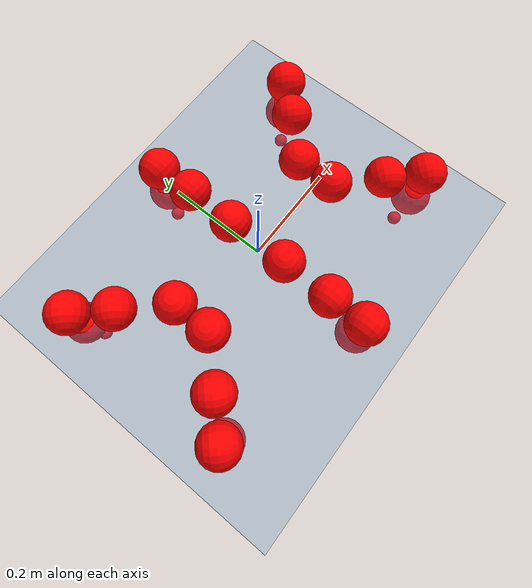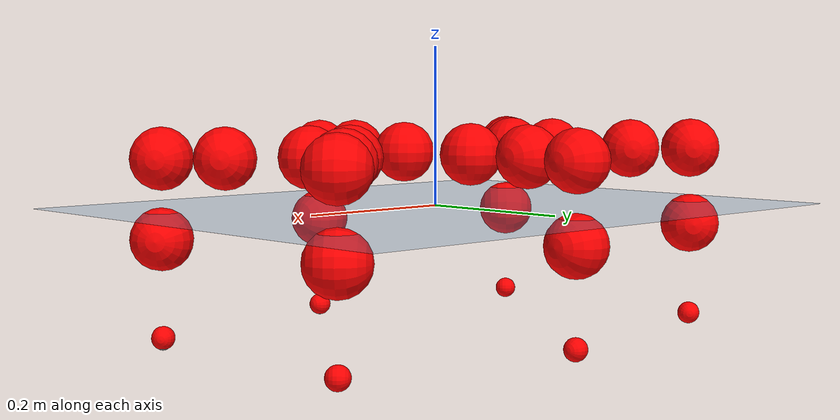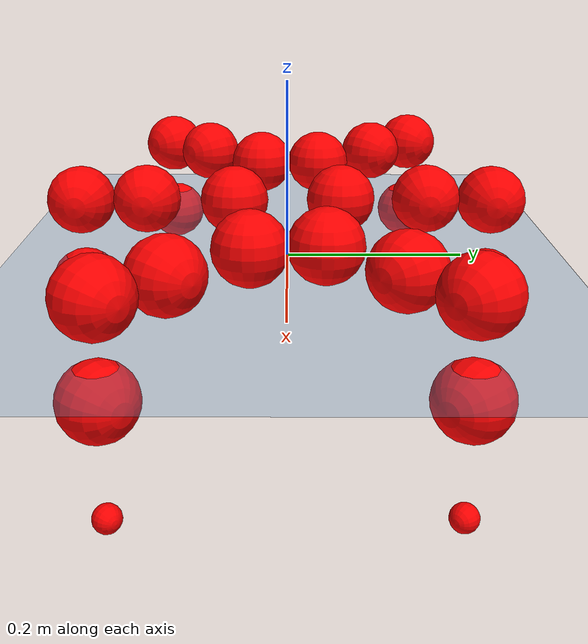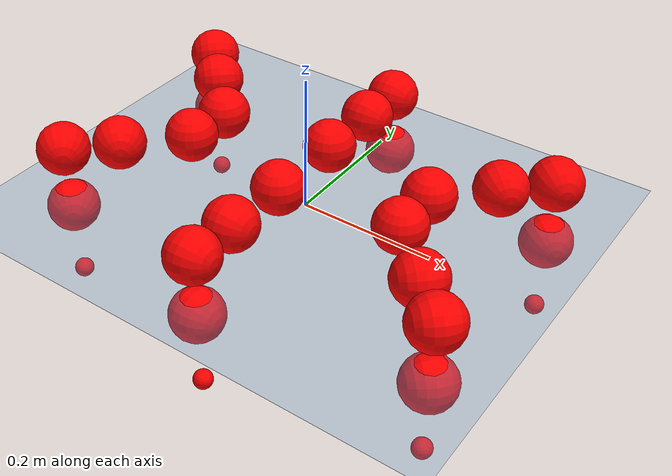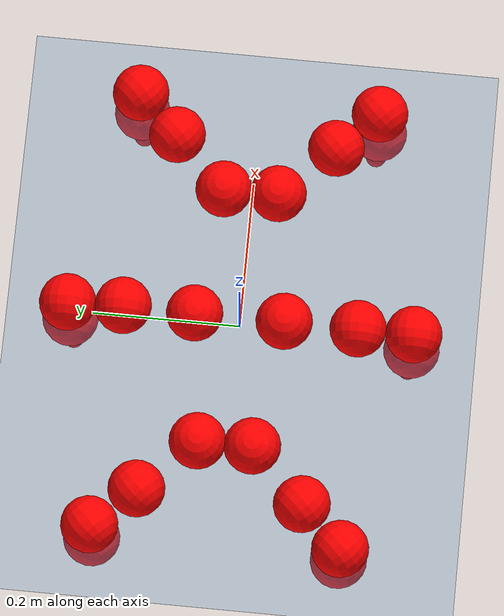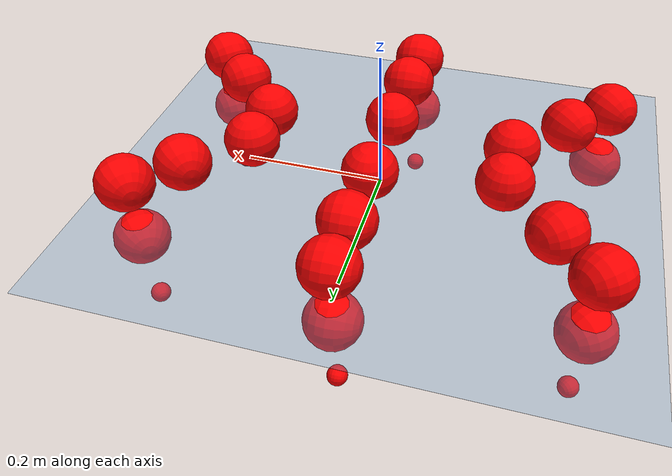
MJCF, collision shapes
<mujoco model="Golem">
  <compiler angle="radian" assetdir="assets" balanceinertia="true" inertiafromgeom="false"/>

  <option timestep="0.005" density="1.2" viscosity="2e-05"/>

  <size nkey="1"/>

  <visual>
    <quality shadowsize="8192"/>
    <map shadowclip="0.5"/>
  </visual>

  <default>
    <default class="/">
      <joint armature="0.01" damping="0.01" frictionloss="0.01"/>
      <geom contype="0" conaffinity="0" group="1" solref="-1000 -80"/>
      <site size="0.01 0.005 0.005" group="5"/>
      <general forcelimited="true" biastype="affine" gainprm="25" biasprm="0 -25 -0.5"/>
      <default class="visual">
        <geom type="mesh" group="2"/>
      </default>
      <default class="collision">
        <geom group="3"/>
      </default>
      <default class="foot">
        <geom size="0.01 0 0" condim="6" group="4" priority="1" solimp="0.015 1 0.01"/>
      </default>
      <default class="reward_collision_sphere">
        <geom group="5" rgba="1 0 0 1"/>
      </default>
    </default>
  </default>

  <asset>
    <texture type="skybox" colorspace="auto" name="//unnamed_texture_0" builtin="gradient" rgb1="0.95 0.95 0.95" rgb2="0.95 0.95 0.95" width="100" height="600"/>
    <texture type="2d" colorspace="auto" name="texplane" builtin="checker" rgb1="0.345 0.575 0.748" rgb2="0.345 0.575 0.748" markrgb="1 1 1" width="512" height="512"/>
    <material name="MatPlane" class="/" texture="texplane" texuniform="true" texrepeat="2 2" specular="0.9"/>
    <mesh name="body" class="/" file="body.stl" scale="0.001 0.001 0.001"/>
    <mesh name="coxa" class="/" file="coxa.stl" scale="0.001 0.001 0.001"/>
    <mesh name="femur" class="/" file="femur.stl" scale="0.001 0.001 0.001"/>
    <mesh name="tibia" class="/" file="tibia.stl" scale="0.001 0.001 0.001"/>
    <mesh name="tarsus" class="/" file="tarsus.stl" scale="0.001 0.001 0.001"/>
  </asset>

  <worldbody>
    <geom name="floor" class="/" size="100 100 0.125" type="plane" group="0" material="MatPlane"/>
    <light name="toplight_shadow" class="/" pos="0 0 5" dir="0.0990148 0.0990148 -0.990148" type="directional" ambient="0.04 0.04 0.04" diffuse="0.55 0.55 0.55" specular="0.12 0.12 0.12"/>
    <light name="toplight_fill" class="/" pos="0 0 5" dir="0.0990148 0.0990148 -0.990148" type="directional" castshadow="false" ambient="0.04 0.04 0.04" diffuse="0.3 0.3 0.3" specular="0.08 0.08 0.08"/>
    <body name="trunk" pos="-0.000983733 0.00168793 -0.000170554" quat="1 1.42433e-05 7.62445e-05 -6.35586e-06">
      <inertial pos="0.00104958 -0.000423326 -0.00539432" quat="0.999996 -0.000417952 0.000673604 -0.00259673" mass="3.34657" diaginertia="0.0174413 0.00188765 0.0123668"/>
      <joint name="//unnamed_joint_0" type="free"/>
      <geom name="//unnamed_geom_1" class="/" pos="0 0 0.0669248" quat="1 0 0 0" type="mesh" rgba="0.9 0.9 0.9 1" mesh="body"/>
      <site name="imu" class="/" pos="0.142825 -0.00065188 0.102383" size="0.00957806"/>
      <camera name="track" class="/" pos="0 -1.42785 0" quat="0.707107 0.707107 0 0" mode="trackcom"/>
      <camera name="ego_camera" class="/" pos="0.144793 0 0.10457" quat="-0.5 -0.5 0.5 0.5"/>
      <body name="coxa_RR" pos="-0.198227 -0.0587538 0.0691633" quat="0.382619 7.53645e-06 0.000614576 -0.923906">
        <inertial pos="-0.000225135 -0.00207097 0.0025397" quat="0.999996 0.00066196 0.000445414 -0.0025897" mass="0.178569" diaginertia="0.0172614 0.00188324 0.0124892"/>
        <joint name="coxa_joint_RR" class="/" pos="0 0 0" axis="0.00290621 0.00222973 -0.999993" range="-3.12271 3.13599" armature="0.0096366" damping="0.00950613" frictionloss="0.0095284"/>
        <geom name="//unnamed_geom_2" class="/" type="mesh" rgba="0.2 0.2 0.2 1" mesh="coxa"/>
        <geom name="//unnamed_geom_3" class="reward_collision_sphere" size="0.0383122" pos="-0.0334138 0 0"/>
        <body name="femur_RR" pos="0.0685358 0.000764109 -0.00138873" quat="0.500217 -0.500187 0.499541 0.500054">
          <inertial pos="-0.00105372 0.000562829 0.000669754" quat="1 7.69961e-06 -4.83975e-06 -1.04798e-05" mass="0.176056" diaginertia="0.0171889 0.00186933 0.0125765"/>
          <joint name="femur_joint_RR" class="/" pos="0 0 0" axis="-0.00259199 0.00135883 -0.999996" range="-3.14334 3.13325" armature="0.00936664" damping="0.00541929" frictionloss="0.00964141"/>
          <geom name="//unnamed_geom_4" class="/" type="mesh" rgba="0.9 0.9 0.9 1" mesh="femur"/>
          <geom name="//unnamed_geom_5" class="reward_collision_sphere" size="0.0383122"/>
          <body name="tibia_RR" pos="0.00107243 -0.0781652 0.000808642" quat="-9.12246e-05 1 -5.60756e-05 9.88734e-06">
            <inertial pos="-0.00080598 -0.000408727 -0.000697375" quat="0.999998 -0.000105097 -0.00198796 -8.53398e-05" mass="0.172777" diaginertia="0.0170666 0.00186383 0.0127668"/>
            <joint name="tibia_joint_RR" class="/" pos="0 0 0" axis="0.00016041 -0.00273779 0.999996" range="-3.12505 3.09238" armature="0.00970041" damping="0.00944577" frictionloss="0.00958625"/>
            <geom name="//unnamed_geom_6" class="/" type="mesh" rgba="0.2 0.2 0.2 1" mesh="tibia"/>
            <geom name="//unnamed_geom_7" class="reward_collision_sphere" size="0.0383122"/>
            <body name="tarsus_RR" pos="0.0983055 -0.00115747 -0.000992751" quat="1 6.23473e-05 0.000104921 -6.93455e-05">
              <inertial pos="0.0692584 0.00297706 -0.00129272" quat="0.501415 0.497982 0.502006 0.498585" mass="0.17962" diaginertia="0.0175617 0.00192409 0.012786"/>
              <joint name="tarsus_joint_RR" class="/" pos="0 0 0" axis="-0.00556295 0.00259056 0.999981" range="-3.09689 3.13706" armature="0.00909809" damping="0.0392" frictionloss="0.0093161"/>
              <geom name="//unnamed_geom_8" class="/" type="mesh" rgba="0.9 0.9 0.9 1" mesh="tarsus"/>
              <geom name="foot_1" class="foot" size="0.00914035" pos="0.124745 0 0" quat="0 -0.707107 0 0.707107"/>
              <geom name="//unnamed_geom_10" class="reward_collision_sphere" size="0.0383122"/>
              <geom name="//unnamed_geom_11" class="reward_collision_sphere" size="0.0143671" pos="0.119733 0 0"/>
              <site name="foot_1" class="foot" pos="0.124745 0 0" quat="0 -0.707107 0 0.707107" size="0.00957806"/>
            </body>
          </body>
        </body>
      </body>
      <body name="coxa_RM" pos="-0.000674714 -0.0948166 0.0659417" quat="0.707125 4.65272e-05 1.86623e-05 -0.707089">
        <inertial pos="-9.06214e-06 -0.000607366 -0.000671213" quat="1 0.000346542 1.31452e-05 0.000472936" mass="0.173569" diaginertia="0.0169518 0.00182993 0.0123616"/>
        <joint name="coxa_joint_RM" class="/" pos="0 0 0" axis="0.000924779 -0.00499738 -0.999987" range="-3.12879 3.15664" armature="0.00973994" damping="0.00670556" frictionloss="0.008497"/>
        <geom name="//unnamed_geom_12" class="/" type="mesh" rgba="0.2 0.2 0.2 1" mesh="coxa"/>
        <geom name="//unnamed_geom_13" class="reward_collision_sphere" size="0.0383122" pos="-0.0334138 0 0"/>
        <body name="femur_RM" pos="0.0658958 -0.000870495 0.00100857" quat="0.500003 -0.499964 0.500016 0.500016">
          <inertial pos="0.000188825 -1.72225e-05 0.000784598" quat="0.999994 0.00124924 0.00252413 0.00209253" mass="0.173544" diaginertia="0.0166745 0.00186728 0.012442"/>
          <joint name="femur_joint_RM" class="/" pos="0 0 0" axis="-0.00379918 -0.000622056 -0.999993" range="-3.15393 3.14908" armature="0.0093602" damping="0" frictionloss="0.00946856"/>
          <geom name="//unnamed_geom_14" class="/" type="mesh" rgba="0.9 0.9 0.9 1" mesh="femur"/>
          <geom name="//unnamed_geom_15" class="reward_collision_sphere" size="0.0383122"/>
          <body name="tibia_RM" pos="0.00150732 -0.0747936 -0.000567318" quat="-0.000104335 1 1.77074e-05 4.84825e-05">
            <inertial pos="-0.00211769 -0.00239034 -0.00105493" quat="0.999943 -0.00123784 -0.00357421 -0.010005" mass="0.174553" diaginertia="0.0170556 0.00184975 0.0121488"/>
            <joint name="tibia_joint_RM" class="/" pos="0 0 0" axis="0.000856385 -0.000774816 0.999999" range="-3.13087 3.12416" armature="0.00929068" damping="0.0149739" frictionloss="0.00945798"/>
            <geom name="//unnamed_geom_16" class="/" type="mesh" rgba="0.2 0.2 0.2 1" mesh="tibia"/>
            <geom name="//unnamed_geom_17" class="reward_collision_sphere" size="0.0383122"/>
            <body name="tarsus_RM" pos="0.0975158 0.000798405 -0.000369233" quat="1 0.000282833 0.000137674 8.03855e-05">
              <inertial pos="0.0665993 0.000886393 0.000395841" quat="0.498848 0.501815 0.500413 0.498919" mass="0.175987" diaginertia="0.0169741 0.00186234 0.0125076"/>
              <joint name="tarsus_joint_RM" class="/" pos="0 0 0" axis="-0.000326655 -0.00190686 0.999998" range="-3.13925 3.13575" armature="0.00867319" damping="0.00401007" frictionloss="0.00976784"/>
              <geom name="//unnamed_geom_18" class="/" type="mesh" rgba="0.9 0.9 0.9 1" mesh="tarsus"/>
              <geom name="foot_2" class="foot" size="0.00935706" pos="0.124745 0 0" quat="0 -0.707107 0 0.707107"/>
              <geom name="//unnamed_geom_20" class="reward_collision_sphere" size="0.0383122"/>
              <geom name="//unnamed_geom_21" class="reward_collision_sphere" size="0.0143671" pos="0.119733 0 0"/>
              <site name="foot_2" class="foot" pos="0.124745 0 0" quat="0 -0.707107 0 0.707107" size="0.00957806"/>
            </body>
          </body>
        </body>
      </body>
      <body name="coxa_RF" pos="0.197949 -0.0607465 0.0660288" quat="0.923922 9.95976e-05 -0.000250663 -0.382581">
        <inertial pos="0.00162476 -0.0001576 0.000383948" quat="0.999999 -0.000535536 -0.000464989 -0.000931836" mass="0.176741" diaginertia="0.0175953 0.00184696 0.0122776"/>
        <joint name="coxa_joint_RF" class="/" pos="0 0 0" axis="0.000155938 -0.00247504 -0.999997" range="-3.13694 3.13044" armature="0.0099163" damping="0.00880728" frictionloss="0.00932688"/>
        <geom name="//unnamed_geom_22" class="/" type="mesh" rgba="0.2 0.2 0.2 1" mesh="coxa"/>
        <geom name="//unnamed_geom_23" class="reward_collision_sphere" size="0.0383122" pos="-0.0334138 0 0"/>
        <body name="femur_RF" pos="0.067825 -0.000843371 -0.00153087" quat="0.500122 -0.499726 0.499983 0.500169">
          <inertial pos="-0.000663378 0.000181164 -0.000810503" quat="0.99999 0.00159093 0.000419574 -0.00423909" mass="0.174216" diaginertia="0.0172667 0.00190044 0.0123899"/>
          <joint name="femur_joint_RF" class="/" pos="0 0 0" axis="0.000278477 0.000162552 -1" range="-3.11042 3.14304" armature="0.00974283" damping="0" frictionloss="0.00909463"/>
          <geom name="//unnamed_geom_24" class="/" type="mesh" rgba="0.9 0.9 0.9 1" mesh="femur"/>
          <geom name="//unnamed_geom_25" class="reward_collision_sphere" size="0.0383122"/>
          <body name="tibia_RF" pos="0.000129628 -0.0763169 -0.000698335" quat="-6.7911e-07 1 7.5512e-05 2.53033e-06">
            <inertial pos="-0.00102331 0.000502523 0.00020002" quat="0.999989 -0.00340629 -0.000372705 -0.00309546" mass="0.175903" diaginertia="0.0175963 0.00185685 0.0126287"/>
            <joint name="tibia_joint_RF" class="/" pos="0 0 0" axis="0.000777288 7.30044e-05 1" range="-3.12871 3.14864" armature="0.00919155" damping="0.0116043" frictionloss="0.00907604"/>
            <geom name="//unnamed_geom_26" class="/" type="mesh" rgba="0.2 0.2 0.2 1" mesh="tibia"/>
            <geom name="//unnamed_geom_27" class="reward_collision_sphere" size="0.0383122"/>
            <body name="tarsus_RF" pos="0.0970658 0.00134564 0.00149638" quat="0.999999 0.000758966 0.000644199 -0.000111925">
              <inertial pos="0.0664159 -0.00188522 0.000629213" quat="0.500295 0.504062 0.504878 0.490637" mass="0.172505" diaginertia="0.0174195 0.00179242 0.0124484"/>
              <joint name="tarsus_joint_RF" class="/" pos="0 0 0" axis="-0.00438802 -0.00326098 0.999985" range="-3.10061 3.12887" armature="0.01067" damping="0" frictionloss="0.00964592"/>
              <geom name="//unnamed_geom_28" class="/" type="mesh" rgba="0.9 0.9 0.9 1" mesh="tarsus"/>
              <geom name="foot_3" class="foot" size="0.0100327" pos="0.124745 0 0" quat="0 -0.707107 0 0.707107"/>
              <geom name="//unnamed_geom_30" class="reward_collision_sphere" size="0.0383122"/>
              <geom name="//unnamed_geom_31" class="reward_collision_sphere" size="0.0143671" pos="0.119733 0 0"/>
              <site name="foot_3" class="foot" pos="0.124745 0 0" quat="0 -0.707107 0 0.707107" size="0.00957806"/>
            </body>
          </body>
        </body>
      </body>
      <body name="coxa_LR" pos="-0.198158 0.0616656 0.0693168" quat="0.383028 -0.000245623 0.000543856 0.923737">
        <inertial pos="0.0011025 -0.00243259 -0.000621737" quat="0.999987 0.00378249 -0.00327377 0.000107663" mass="0.170964" diaginertia="0.016697 0.00184928 0.0121783"/>
        <joint name="coxa_joint_LR" class="/" pos="0 0 0" axis="0.000137222 0.000112239 -1" range="-3.12258 3.17805" armature="0.00874291" damping="0.00740609" frictionloss="0.00956189"/>
        <geom name="//unnamed_geom_32" class="/" type="mesh" rgba="0.2 0.2 0.2 1" mesh="coxa"/>
        <geom name="//unnamed_geom_33" class="reward_collision_sphere" size="0.0383122" pos="-0.0334138 0 0"/>
        <body name="femur_LR" pos="0.0697143 -0.00170861 -0.000989286" quat="0.500107 -0.499775 0.500014 0.500104">
          <inertial pos="-0.00102853 -0.000146244 -0.000793542" quat="0.999952 -0.00541994 -0.00305552 -0.0076158" mass="0.17622" diaginertia="0.0172483 0.00185707 0.012865"/>
          <joint name="femur_joint_LR" class="/" pos="0 0 0" axis="-0.00132527 -0.000875987 0.999999" range="-3.09452 3.1187" armature="0.00947348" damping="0.00128709" frictionloss="0.00939884"/>
          <geom name="//unnamed_geom_34" class="/" type="mesh" rgba="0.9 0.9 0.9 1" mesh="femur"/>
          <geom name="//unnamed_geom_35" class="reward_collision_sphere" size="0.0383122"/>
          <body name="tibia_LR" pos="-0.000969758 -0.0785136 -0.00213912" quat="-0.00023171 1 4.48734e-05 -0.000168139">
            <inertial pos="-0.000502257 -0.00187927 0.000935361" quat="1 1.40446e-05 0.000703052 -0.000702909" mass="0.175711" diaginertia="0.0171777 0.00183481 0.0125304"/>
            <joint name="tibia_joint_LR" class="/" pos="0 0 0" axis="0.000911759 0.00281839 -0.999996" range="-3.16031 3.13214" armature="0.00968611" damping="0" frictionloss="0.00955937"/>
            <geom name="//unnamed_geom_36" class="/" type="mesh" rgba="0.2 0.2 0.2 1" mesh="tibia"/>
            <geom name="//unnamed_geom_37" class="reward_collision_sphere" size="0.0383122"/>
            <body name="tarsus_LR" pos="0.0994243 0.000684144 3.99493e-06" quat="1 -0.000539496 3.89646e-05 0.000434923">
              <inertial pos="0.068151 0.000182852 0.000283317" quat="0.500255 0.499564 0.499918 0.500262" mass="0.175145" diaginertia="0.0169624 0.00184139 0.0123232"/>
              <joint name="tarsus_joint_LR" class="/" pos="0 0 0" axis="0.000948467 0.00154063 -0.999998" range="-3.16879 3.13598" armature="0.00963216" damping="0.0301629" frictionloss="0.00878603"/>
              <geom name="//unnamed_geom_38" class="/" type="mesh" rgba="0.9 0.9 0.9 1" mesh="tarsus"/>
              <geom name="foot_4" class="foot" size="0.00934304" pos="0.124745 0 0" quat="0.707107 0 -0.707107 0"/>
              <geom name="//unnamed_geom_40" class="reward_collision_sphere" size="0.0383122"/>
              <geom name="//unnamed_geom_41" class="reward_collision_sphere" size="0.0143671" pos="0.119733 0 0"/>
              <site name="foot_4" class="foot" pos="0.124745 0 0" quat="0.707107 0 -0.707107 0" size="0.00957806"/>
            </body>
          </body>
        </body>
      </body>
      <body name="coxa_LM" pos="-0.000928041 0.0923405 0.067025" quat="0.707275 -0.000203898 -8.35817e-05 0.706938">
        <inertial pos="-0.000849069 0.000857267 0.000189471" quat="1 0.000227006 -0.00037081 -0.000515598" mass="0.177734" diaginertia="0.0169663 0.00181884 0.0128595"/>
        <joint name="coxa_joint_LM" class="/" pos="0 0 0" axis="-0.00331025 -0.000236623 -0.999994" stiffness="0.0074434" range="-3.13702 3.1367" armature="0.0104909" damping="0.00238292" frictionloss="0.00952903"/>
        <geom name="//unnamed_geom_42" class="/" type="mesh" rgba="0.2 0.2 0.2 1" mesh="coxa"/>
        <geom name="//unnamed_geom_43" class="reward_collision_sphere" size="0.0383122" pos="-0.0334138 0 0"/>
        <body name="femur_LM" pos="0.0627334 -0.00111305 0.000764266" quat="0.499928 -0.500008 0.50002 0.500044">
          <inertial pos="0.000993152 -0.000781252 0.00162446" quat="0.999999 0.000556016 0.000503185 -0.00116174" mass="0.176082" diaginertia="0.0169827 0.0018512 0.0126656"/>
          <joint name="femur_joint_LM" class="/" pos="0 0 0" axis="0.00751866 0.00244422 0.999969" range="-3.13269 3.12174" armature="0.00914474" damping="0.00546003" frictionloss="0.00970419"/>
          <geom name="//unnamed_geom_44" class="/" type="mesh" rgba="0.9 0.9 0.9 1" mesh="femur"/>
          <geom name="//unnamed_geom_45" class="reward_collision_sphere" size="0.0383122"/>
          <body name="tibia_LM" pos="0.00193945 -0.0746881 0.0020228" quat="-9.64417e-07 1 -7.49515e-05 -0.000262206">
            <inertial pos="0.000311667 -0.00240635 0.00228438" quat="0.999936 0.00104521 0.00289838 -0.0109176" mass="0.171698" diaginertia="0.0172925 0.00182168 0.0123266"/>
            <joint name="tibia_joint_LM" class="/" pos="0 0 0" axis="-0.00292051 -0.00146732 -0.999995" range="-3.13685 3.10534" armature="0.00915892" damping="0.00398585" frictionloss="0.00954001"/>
            <geom name="//unnamed_geom_46" class="/" type="mesh" rgba="0.2 0.2 0.2 1" mesh="tibia"/>
            <geom name="//unnamed_geom_47" class="reward_collision_sphere" size="0.0383122"/>
            <body name="tarsus_LM" pos="0.0980673 0.000161152 0.000823594" quat="1 -0.000155569 -0.000159109 0.000458141">
              <inertial pos="0.0674489 0.000104018 -0.00129031" quat="0.505713 0.498729 0.492252 0.503202" mass="0.180297" diaginertia="0.0172809 0.00184853 0.0125693"/>
              <joint name="tarsus_joint_LM" class="/" pos="0 0 0" axis="0.000758261 0.00640777 -0.999979" range="-3.14543 3.10737" armature="0.00999409" damping="0" frictionloss="0.00954658"/>
              <geom name="//unnamed_geom_48" class="/" type="mesh" rgba="0.9 0.9 0.9 1" mesh="tarsus"/>
              <geom name="foot_5" class="foot" size="0.00950998" pos="0.124745 0 0" quat="0.707107 0 -0.707107 0"/>
              <geom name="//unnamed_geom_50" class="reward_collision_sphere" size="0.0383122"/>
              <geom name="//unnamed_geom_51" class="reward_collision_sphere" size="0.0143671" pos="0.119733 0 0"/>
              <site name="foot_5" class="foot" pos="0.124745 0 0" quat="0.707107 0 -0.707107 0" size="0.00957806"/>
            </body>
          </body>
        </body>
      </body>
      <body name="coxa_LF" pos="0.196951 0.0600621 0.068387" quat="0.92376 -0.000811313 -5.41785e-05 0.38297">
        <inertial pos="-0.000832007 0.000796002 -0.000771791" quat="0.999936 -0.00403868 -0.000574411 0.0105384" mass="0.180206" diaginertia="0.0173067 0.001898 0.0121663"/>
        <joint name="coxa_joint_LF" class="/" pos="0 0 0" axis="0.000963518 0.00113282 -0.999999" range="-3.13893 3.14019" armature="0.00975305" damping="0.00372229" frictionloss="0.00949191"/>
        <geom name="//unnamed_geom_52" class="/" type="mesh" rgba="0.2 0.2 0.2 1" mesh="coxa"/>
        <geom name="//unnamed_geom_53" class="reward_collision_sphere" size="0.0383122" pos="-0.0334138 0 0"/>
        <body name="femur_LF" pos="0.0652021 0.000119546 -0.000214771" quat="0.500253 -0.499817 0.500237 0.499692">
          <inertial pos="0.00162634 0.000986568 0.00190925" quat="0.999987 0.00213965 -0.000415873 0.00458032" mass="0.173286" diaginertia="0.0167879 0.00185023 0.0121117"/>
          <joint name="femur_joint_LF" class="/" pos="0 0 0" axis="-0.00300249 -0.00201152 0.999993" range="-3.1405 3.18455" armature="0.00978989" damping="0" frictionloss="0.00974524"/>
          <geom name="//unnamed_geom_54" class="/" type="mesh" rgba="0.9 0.9 0.9 1" mesh="femur"/>
          <geom name="//unnamed_geom_55" class="reward_collision_sphere" size="0.0383122"/>
          <body name="tibia_LF" pos="0.00189235 -0.0770877 0.000523212" quat="-4.83682e-05 1 -0.000108793 -0.000105331">
            <inertial pos="6.98734e-05 -0.000851487 2.00763e-05" quat="0.999999 -0.00114114 0.000532423 -0.000239029" mass="0.175611" diaginertia="0.0171058 0.00185943 0.0125366"/>
            <joint name="tibia_joint_LF" class="/" pos="0 0 0" axis="0.00187593 0.00186204 -0.999997" range="-3.11928 3.14573" armature="0.00871227" damping="0" frictionloss="0.00911447"/>
            <geom name="//unnamed_geom_56" class="/" type="mesh" rgba="0.2 0.2 0.2 1" mesh="tibia"/>
            <geom name="//unnamed_geom_57" class="reward_collision_sphere" size="0.0383122"/>
            <body name="tarsus_LF" pos="0.0983262 0.000206343 5.54988e-05" quat="1 0.00033529 -0.00013208 0.000285755">
              <inertial pos="0.0664489 -0.00090924 0.000541375" quat="0.500154 0.500693 0.499316 0.499836" mass="0.173884" diaginertia="0.0173275 0.00186753 0.0125589"/>
              <joint name="tarsus_joint_LF" class="/" pos="0 0 0" axis="0.00298872 -0.00194831 -0.999994" stiffness="0.0220073" range="-3.17461 3.17676" armature="0.00957495" damping="0" frictionloss="0.00936022"/>
              <geom name="//unnamed_geom_58" class="/" type="mesh" rgba="0.9 0.9 0.9 1" mesh="tarsus"/>
              <geom name="foot_6" class="foot" size="0.00923614" pos="0.124745 0 0" quat="0.707107 0 -0.707107 0"/>
              <geom name="//unnamed_geom_60" class="reward_collision_sphere" size="0.0383122"/>
              <geom name="//unnamed_geom_61" class="reward_collision_sphere" size="0.0143671" pos="0.119733 0 0"/>
              <site name="foot_6" class="foot" pos="0.124745 0 0" quat="0.707107 0 -0.707107 0" size="0.00957806"/>
            </body>
          </body>
        </body>
      </body>
    </body>
  </worldbody>

  <contact>
    <pair class="/" geom1="floor" geom2="foot_1" name="//unnamed_contact_0"/>
    <pair class="/" geom1="floor" geom2="foot_2" name="//unnamed_contact_1"/>
    <pair class="/" geom1="floor" geom2="foot_3" name="//unnamed_contact_2"/>
    <pair class="/" geom1="floor" geom2="foot_4" name="//unnamed_contact_3"/>
    <pair class="/" geom1="floor" geom2="foot_5" name="//unnamed_contact_4"/>
    <pair class="/" geom1="floor" geom2="foot_6" name="//unnamed_contact_5"/>
  </contact>

  <actuator>
    <general name="coxa_joint_RR" class="/" joint="coxa_joint_RR" forcerange="-6.75264 6.75264" gainprm="23.0293" biasprm="0 -23.0293 -0.49708"/>
    <general name="femur_joint_RR" class="/" joint="femur_joint_RR" forcerange="-7.15296 7.15296" gainprm="23.0293" biasprm="0 -23.0293 -0.49708"/>
    <general name="tibia_joint_RR" class="/" joint="tibia_joint_RR" forcerange="-6.45061 6.45061" gainprm="23.0293" biasprm="0 -23.0293 -0.49708"/>
    <general name="tarsus_joint_RR" class="/" joint="tarsus_joint_RR" forcerange="-6.97379 6.97379" gainprm="23.0293" biasprm="0 -23.0293 -0.49708"/>
    <general name="coxa_joint_RM" class="/" joint="coxa_joint_RM" forcerange="-6.97256 6.97256" gainprm="23.0293" biasprm="0 -23.0293 -0.49708"/>
    <general name="femur_joint_RM" class="/" joint="femur_joint_RM" forcerange="-7.08714 7.08714" gainprm="23.0293" biasprm="0 -23.0293 -0.49708"/>
    <general name="tibia_joint_RM" class="/" joint="tibia_joint_RM" forcerange="-6.39944 6.39944" gainprm="23.0293" biasprm="0 -23.0293 -0.49708"/>
    <general name="tarsus_joint_RM" class="/" joint="tarsus_joint_RM" forcerange="-7.23768 7.23768" gainprm="23.0293" biasprm="0 -23.0293 -0.49708"/>
    <general name="coxa_joint_RF" class="/" joint="coxa_joint_RF" forcerange="-6.88195 6.88195" gainprm="23.0293" biasprm="0 -23.0293 -0.49708"/>
    <general name="femur_joint_RF" class="/" joint="femur_joint_RF" forcerange="-7.58823 7.58823" gainprm="23.0293" biasprm="0 -23.0293 -0.49708"/>
    <general name="tibia_joint_RF" class="/" joint="tibia_joint_RF" forcerange="-6.83339 6.83339" gainprm="23.0293" biasprm="0 -23.0293 -0.49708"/>
    <general name="tarsus_joint_RF" class="/" joint="tarsus_joint_RF" forcerange="-7.58196 7.58196" gainprm="23.0293" biasprm="0 -23.0293 -0.49708"/>
    <general name="coxa_joint_LR" class="/" joint="coxa_joint_LR" forcerange="-6.66563 6.66563" gainprm="23.0293" biasprm="0 -23.0293 -0.49708"/>
    <general name="femur_joint_LR" class="/" joint="femur_joint_LR" forcerange="-6.73151 6.73151" gainprm="23.0293" biasprm="0 -23.0293 -0.49708"/>
    <general name="tibia_joint_LR" class="/" joint="tibia_joint_LR" forcerange="-6.93944 6.93944" gainprm="23.0293" biasprm="0 -23.0293 -0.49708"/>
    <general name="tarsus_joint_LR" class="/" joint="tarsus_joint_LR" forcerange="-7.05766 7.05766" gainprm="23.0293" biasprm="0 -23.0293 -0.49708"/>
    <general name="coxa_joint_LM" class="/" joint="coxa_joint_LM" forcerange="-6.80197 6.80197" gainprm="23.0293" biasprm="0 -23.0293 -0.49708"/>
    <general name="femur_joint_LM" class="/" joint="femur_joint_LM" forcerange="-7.02099 7.02099" gainprm="23.0293" biasprm="0 -23.0293 -0.49708"/>
    <general name="tibia_joint_LM" class="/" joint="tibia_joint_LM" forcerange="-6.49875 6.49875" gainprm="23.0293" biasprm="0 -23.0293 -0.49708"/>
    <general name="tarsus_joint_LM" class="/" joint="tarsus_joint_LM" forcerange="-6.87379 6.87379" gainprm="23.0293" biasprm="0 -23.0293 -0.49708"/>
    <general name="coxa_joint_LF" class="/" joint="coxa_joint_LF" forcerange="-6.72642 6.72642" gainprm="23.0293" biasprm="0 -23.0293 -0.49708"/>
    <general name="femur_joint_LF" class="/" joint="femur_joint_LF" forcerange="-6.62327 6.62327" gainprm="23.0293" biasprm="0 -23.0293 -0.49708"/>
    <general name="tibia_joint_LF" class="/" joint="tibia_joint_LF" forcerange="-6.93349 6.93349" gainprm="23.0293" biasprm="0 -23.0293 -0.49708"/>
    <general name="tarsus_joint_LF" class="/" joint="tarsus_joint_LF" forcerange="-7.01585 7.01585" gainprm="23.0293" biasprm="0 -23.0293 -0.49708"/>
  </actuator>

  <sensor>
    <gyro site="imu" name="imu_angular_velocity"/>
    <velocimeter site="imu" name="imu_linear_velocity"/>
    <framelinvel objtype="site" objname="foot_1" name="foot_1_global_linear_velocity"/>
    <framelinvel objtype="site" objname="foot_2" name="foot_2_global_linear_velocity"/>
    <framelinvel objtype="site" objname="foot_3" name="foot_3_global_linear_velocity"/>
    <framelinvel objtype="site" objname="foot_4" name="foot_4_global_linear_velocity"/>
    <framelinvel objtype="site" objname="foot_5" name="foot_5_global_linear_velocity"/>
    <framelinvel objtype="site" objname="foot_6" name="foot_6_global_linear_velocity"/>
  </sensor>

  <keyframe>
    <key name="home" qpos="0 0 0.1457 1 0 0 0 0 0 0 0 0 0 0 0 0 0 0 0 0 0 0 0 0 0 0 0 0 0 0 0"/>
  </keyframe>
</mujoco>
